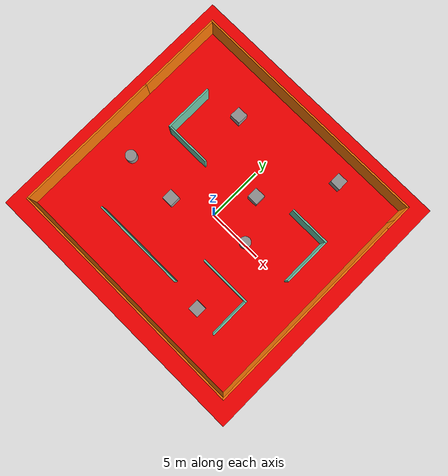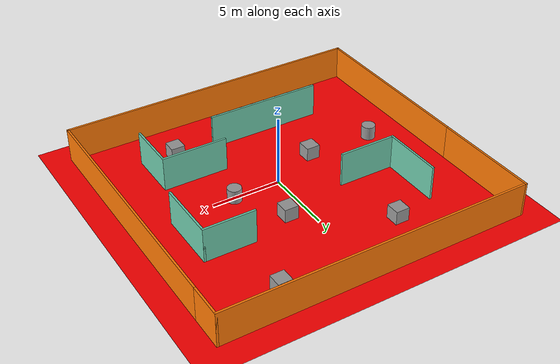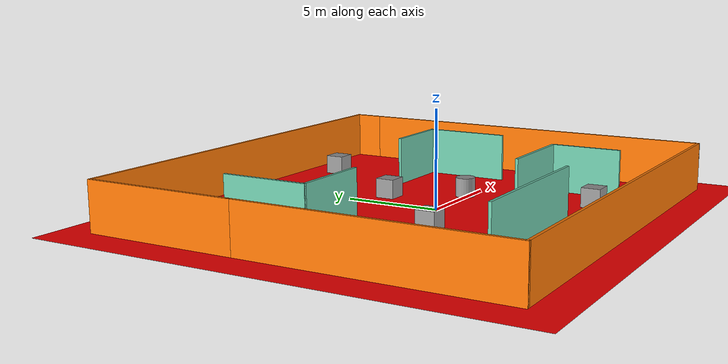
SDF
<sdf version="1.7">
 <world name="default">
  <light name="sun" type="directional">
   <pose>0 0 10 0 -0 0</pose>
   <diffuse>0.8 0.8 0.8 1</diffuse>
   <specular>0.2 0.2 0.2 1</specular>
   <attenuation>
    <range>1000</range>
    <constant>0.9</constant>
    <linear>0.01</linear>
    <quadratic>0.001</quadratic>
   </attenuation>
   <direction>-0.5 0.1 -0.9</direction>
   <spot><inner_angle>0</inner_angle><outer_angle>0</outer_angle><falloff>0</falloff></spot>
  </light>
  <model name="ground_plane">
   <static>1</static>
   <link name="link">
    <collision name="collision">
     <geometry><plane><normal>0 0 1</normal><size>100 100</size></plane></geometry>
     <surface>
      <contact><collide_bitmask>65535</collide_bitmask></contact>
      <friction><ode><mu>100</mu><mu2>50</mu2></ode></friction>
     </surface>
    </collision>
    <visual name="target_visual">
     <geometry><sphere><radius>0.2</radius></sphere></geometry>
     <material><ambient>1 0 0 1</ambient><diffuse>1 0 0 1</diffuse></material>
     <pose>3 2 1 0 0 0</pose>
     <cast_shadows>0</cast_shadows>
    </visual>
    <visual name="visual">
     <cast_shadows>0</cast_shadows>
     <geometry><plane><normal>0 0 1</normal><size>100 100</size></plane></geometry>
     <material>
      <script><uri>file://media/materials/scripts/gazebo.material</uri><name>Gazebo/Grey</name></script>
     </material>
    </visual>
   </link>
  </model>
  <gravity>0 0 -9.8</gravity>
  <magnetic_field>6e-06 2.3e-05 -4.2e-05</magnetic_field>
  <atmosphere type="adiabatic"/>
  <physics type="ode">
   <max_step_size>0.001</max_step_size>
   <real_time_factor>1</real_time_factor>
   <real_time_update_rate>1000</real_time_update_rate>
  </physics>
  <scene><ambient>0.4 0.4 0.4 1</ambient><background>0.7 0.7 0.7 1</background><shadows>1</shadows></scene>
  <spherical_coordinates>
   <surface_model>EARTH_WGS84</surface_model>
   <latitude_deg>0</latitude_deg>
   <longitude_deg>0</longitude_deg>
   <elevation>0</elevation>
   <heading_deg>0</heading_deg>
  </spherical_coordinates>
  <model name="environment">
   <pose>-0.300416 0.727904 0 0 -0 0</pose>
   <link name="Wall_55">
    <collision name="Wall_55_Collision">
     <geometry><box><size>13.5 0.15 2.5</size></box></geometry>
     <pose>0 0 1.25 0 -0 0</pose>
    </collision>
    <visual name="Wall_55_Visual">
     <pose>0 0 1.25 0 -0 0</pose>
     <geometry><box><size>13.5 0.15 2.5</size></box></geometry>
     <material>
      <script><uri>file://media/materials/scripts/gazebo.material</uri><name>Gazebo/Grey</name></script>
      <ambient>0.996078 0.47451 0.0196078 1</ambient>
     </material>
     <meta><layer>0</layer></meta>
    </visual>
    <pose>-11.175 -3.925 0 0 -0 -1.5708</pose>
   </link>
   <link name="Wall_56">
    <collision name="Wall_56_Collision">
     <geometry><box><size>22.5 0.15 2.5</size></box></geometry>
     <pose>0 0 1.25 0 -0 0</pose>
    </collision>
    <visual name="Wall_56_Visual">
     <pose>0 0 1.25 0 -0 0</pose>
     <geometry><box><size>22.5 0.15 2.5</size></box></geometry>
     <material>
      <script><uri>file://media/materials/scripts/gazebo.material</uri><name>Gazebo/Grey</name></script>
      <ambient>0.996078 0.47451 0.0196078 1</ambient>
     </material>
     <meta><layer>0</layer></meta>
    </visual>
    <pose>0 -10.6 0 0 -0 0</pose>
   </link>
   <link name="Wall_57">
    <collision name="Wall_57_Collision">
     <geometry><box><size>19.75 0.15 2.5</size></box></geometry>
     <pose>0 0 1.25 0 -0 0</pose>
    </collision>
    <visual name="Wall_57_Visual">
     <pose>0 0 1.25 0 -0 0</pose>
     <geometry><box><size>19.75 0.15 2.5</size></box></geometry>
     <material>
      <script><uri>file://media/materials/scripts/gazebo.material</uri><name>Gazebo/Grey</name></script>
      <ambient>0.996078 0.47451 0.0196078 1</ambient>
     </material>
     <meta><layer>0</layer></meta>
    </visual>
    <pose>11.175 -0.8 0 0 -0 1.5708</pose>
   </link>
   <link name="Wall_61">
    <collision name="Wall_61_Collision">
     <geometry><box><size>8 0.15 2.5</size></box></geometry>
     <pose>0 0 1.25 0 -0 0</pose>
    </collision>
    <visual name="Wall_61_Visual">
     <pose>0 0 1.25 0 -0 0</pose>
     <geometry><box><size>8 0.15 2.5</size></box></geometry>
     <material>
      <script><uri>file://media/materials/scripts/gazebo.material</uri><name>Gazebo/Grey</name></script>
      <ambient>0.996078 0.47451 0.0196078 1</ambient>
     </material>
     <meta><layer>0</layer></meta>
    </visual>
    <pose>-11.175 6.675 0 0 -0 1.5708</pose>
   </link>
   <link name="Wall_62">
    <collision name="Wall_62_Collision">
     <geometry><box><size>22.5 0.15 2.5</size></box></geometry>
     <pose>0 0 1.25 0 -0 0</pose>
    </collision>
    <visual name="Wall_62_Visual">
     <pose>0 0 1.25 0 -0 0</pose>
     <geometry><box><size>22.5 0.15 2.5</size></box></geometry>
     <material>
      <script><uri>file://media/materials/scripts/gazebo.material</uri><name>Gazebo/Grey</name></script>
      <ambient>0.996078 0.47451 0.0196078 1</ambient>
     </material>
     <meta><layer>0</layer></meta>
    </visual>
    <pose>0 10.6 0 0 -0 0</pose>
   </link>
   <link name="Wall_63">
    <collision name="Wall_63_Collision">
     <geometry><box><size>2.5 0.15 2.5</size></box></geometry>
     <pose>0 0 1.25 0 -0 0</pose>
    </collision>
    <visual name="Wall_63_Visual">
     <pose>0 0 1.25 0 -0 0</pose>
     <geometry><box><size>2.5 0.15 2.5</size></box></geometry>
     <material>
      <script><uri>file://media/materials/scripts/gazebo.material</uri><name>Gazebo/Grey</name></script>
      <ambient>0.996078 0.47451 0.0196078 1</ambient>
     </material>
     <meta><layer>0</layer></meta>
    </visual>
    <pose>11.175 9.425 0 0 -0 -1.5708</pose>
   </link>
   <link name="Wall_65">
    <collision name="Wall_65_Collision">
     <geometry><box><size>4.5 0.15 2.5</size></box></geometry>
     <pose>0 0 1.25 0 -0 0</pose>
    </collision>
    <visual name="Wall_65_Visual">
     <pose>0 0 1.25 0 -0 0</pose>
     <geometry><box><size>4.5 0.15 2.5</size></box></geometry>
     <material>
      <script><uri>file://media/materials/scripts/gazebo.material</uri><name>Gazebo/Grey</name></script>
      <ambient>0.435294 0.796078 0.67451 1</ambient>
     </material>
     <meta><layer>0</layer></meta>
    </visual>
    <pose>-7.28296 3.91589 0 0 -0 -1.5708</pose>
   </link>
   <link name="Wall_66">
    <collision name="Wall_66_Collision">
     <geometry><box><size>4.25 0.15 2.5</size></box></geometry>
     <pose>0 0 1.25 0 -0 0</pose>
    </collision>
    <visual name="Wall_66_Visual">
     <pose>0 0 1.25 0 -0 0</pose>
     <geometry><box><size>4.25 0.15 2.5</size></box></geometry>
     <material>
      <script><uri>file://media/materials/scripts/gazebo.material</uri><name>Gazebo/Grey</name></script>
      <ambient>0.435294 0.796078 0.67451 1</ambient>
     </material>
     <meta><layer>0</layer></meta>
    </visual>
    <pose>-5.23296 1.74089 0 0 -0 0</pose>
   </link>
   <link name="Wall_68">
    <collision name="Wall_68_Collision">
     <geometry><box><size>3.75 0.15 2.5</size></box></geometry>
     <pose>0 0 1.25 0 -0 0</pose>
    </collision>
    <visual name="Wall_68_Visual">
     <pose>0 0 1.25 0 -0 0</pose>
     <geometry><box><size>3.75 0.15 2.5</size></box></geometry>
     <material>
      <script><uri>file://media/materials/scripts/gazebo.material</uri><name>Gazebo/Grey</name></script>
      <ambient>0.435294 0.796078 0.67451 1</ambient>
     </material>
     <meta><layer>0</layer></meta>
    </visual>
    <pose>6.6086 3.89729 0 0 -0 0</pose>
   </link>
   <link name="Wall_69">
    <collision name="Wall_69_Collision">
     <geometry><box><size>4.5 0.15 2.5</size></box></geometry>
     <pose>0 0 1.25 0 -0 0</pose>
    </collision>
    <visual name="Wall_69_Visual">
     <pose>0 0 1.25 0 -0 0</pose>
     <geometry><box><size>4.5 0.15 2.5</size></box></geometry>
     <material>
      <script><uri>file://media/materials/scripts/gazebo.material</uri><name>Gazebo/Grey</name></script>
      <ambient>0.435294 0.796078 0.67451 1</ambient>
     </material>
     <meta><layer>0</layer></meta>
    </visual>
    <pose>8.4086 1.72229 0 0 -0 -1.5708</pose>
   </link>
   <link name="Wall_71">
    <collision name="Wall_71_Collision">
     <geometry><box><size>8.5 0.15 2.5</size></box></geometry>
     <pose>0 0 1.25 0 -0 0</pose>
    </collision>
    <visual name="Wall_71_Visual">
     <pose>0 0 1.25 0 -0 0</pose>
     <geometry><box><size>8.5 0.15 2.5</size></box></geometry>
     <material>
      <script><uri>file://media/materials/scripts/gazebo.material</uri><name>Gazebo/Grey</name></script>
      <ambient>0.435294 0.796078 0.67451 1</ambient>
     </material>
     <meta><layer>0</layer></meta>
    </visual>
    <pose>-2.19842 -6.85672 0 0 -0 0</pose>
   </link>
   <link name="Wall_73">
    <collision name="Wall_73_Collision">
     <geometry><box><size>4.75 0.15 2.5</size></box></geometry>
     <pose>0 0 1.25 0 -0 0</pose>
    </collision>
    <visual name="Wall_73_Visual">
     <pose>0 0 1.25 0 -0 0</pose>
     <geometry><box><size>4.75 0.15 2.5</size></box></geometry>
     <material>
      <script><uri>file://media/materials/scripts/gazebo.material</uri><name>Gazebo/Grey</name></script>
      <ambient>0.435294 0.796078 0.67451 1</ambient>
     </material>
     <meta><layer>0</layer></meta>
    </visual>
    <pose>4.8615 -4.02108 0 0 -0 0</pose>
   </link>
   <link name="Wall_74">
    <collision name="Wall_74_Collision">
     <geometry><box><size>3.75 0.15 2.5</size></box></geometry>
     <pose>0 0 1.25 0 -0 0</pose>
    </collision>
    <visual name="Wall_74_Visual">
     <pose>0 0 1.25 0 -0 0</pose>
     <geometry><box><size>3.75 0.15 2.5</size></box></geometry>
     <material>
      <script><uri>file://media/materials/scripts/gazebo.material</uri><name>Gazebo/Grey</name></script>
      <ambient>0.435294 0.796078 0.67451 1</ambient>
     </material>
     <meta><layer>0</layer></meta>
    </visual>
    <pose>7.1615 -5.82108 0 0 -0 -1.5708</pose>
   </link>
   <static>1</static>
  </model>
  <model name="unit_box">
   <pose>-4.45005 7.44754 0.499995 0 1e-05 0</pose>
   <link name="link">
    <inertial>
     <mass>1</mass>
     <inertia>
      <ixx>0.166667</ixx>
      <ixy>0</ixy>
      <ixz>0</ixz>
      <iyy>0.166667</iyy>
      <iyz>0</iyz>
      <izz>0.166667</izz>
     </inertia>
    </inertial>
    <collision name="collision"><geometry><box><size>1 1 1</size></box></geometry></collision>
    <visual name="visual">
     <geometry><box><size>1 1 1</size></box></geometry>
     <material>
      <script><name>Gazebo/Grey</name><uri>file://media/materials/scripts/gazebo.material</uri></script>
     </material>
    </visual>
   </link>
  </model>
  <model name="unit_box_0">
   <pose>1.4624 3.53497 0.499995 -1e-05 -0 -0</pose>
   <link name="link">
    <inertial>
     <mass>1</mass>
     <inertia>
      <ixx>0.166667</ixx>
      <ixy>0</ixy>
      <ixz>0</ixz>
      <iyy>0.166667</iyy>
      <iyz>0</iyz>
      <izz>0.166667</izz>
     </inertia>
    </inertial>
    <collision name="collision"><geometry><box><size>1 1 1</size></box></geometry></collision>
    <visual name="visual">
     <geometry><box><size>1 1 1</size></box></geometry>
     <material>
      <script><name>Gazebo/Grey</name><uri>file://media/materials/scripts/gazebo.material</uri></script>
     </material>
    </visual>
   </link>
  </model>
  <model name="unit_box_1">
   <pose>-3.50819 -1.57316 0.499995 0 1e-05 0</pose>
   <link name="link">
    <inertial>
     <mass>1</mass>
     <inertia>
      <ixx>0.166667</ixx>
      <ixy>0</ixy>
      <ixz>0</ixz>
      <iyy>0.166667</iyy>
      <iyz>0</iyz>
      <izz>0.166667</izz>
     </inertia>
    </inertial>
    <collision name="collision"><geometry><box><size>1 1 1</size></box></geometry></collision>
    <visual name="visual">
     <geometry><box><size>1 1 1</size></box></geometry>
     <material>
      <script><name>Gazebo/Grey</name><uri>file://media/materials/scripts/gazebo.material</uri></script>
     </material>
    </visual>
   </link>
  </model>
  <model name="unit_cylinder">
   <pose>3.49439 0.151942 0.499993 -3e-06 -3e-06 0</pose>
   <link name="link">
    <inertial>
     <mass>1</mass>
     <inertia><ixx>0.145833</ixx><ixy>0</ixy><ixz>0</ixz><iyy>0.145833</iyy><iyz>0</iyz><izz>0.125</izz></inertia>
    </inertial>
    <collision name="collision">
     <geometry><cylinder><radius>0.5</radius><length>1</length></cylinder></geometry>
    </collision>
    <visual name="visual">
     <geometry><cylinder><radius>0.5</radius><length>1</length></cylinder></geometry>
     <material>
      <script><name>Gazebo/Grey</name><uri>file://media/materials/scripts/gazebo.material</uri></script>
     </material>
    </visual>
   </link>
  </model>
  <model name="unit_cylinder_0">
   <pose>-8.45045 -1.42055 0.499997 3e-06 4e-06 -0</pose>
   <link name="link">
    <inertial>
     <mass>1</mass>
     <inertia><ixx>0.145833</ixx><ixy>0</ixy><ixz>0</ixz><iyy>0.145833</iyy><iyz>0</iyz><izz>0.125</izz></inertia>
    </inertial>
    <collision name="collision">
     <geometry><cylinder><radius>0.5</radius><length>1</length></cylinder></geometry>
    </collision>
    <visual name="visual">
     <geometry><cylinder><radius>0.5</radius><length>1</length></cylinder></geometry>
     <material>
      <script><name>Gazebo/Grey</name><uri>file://media/materials/scripts/gazebo.material</uri></script>
     </material>
    </visual>
   </link>
  </model>
  <model name="unit_box_2">
   <pose>5.49377 9.30513 0.499995 -1e-05 -0 0</pose>
   <link name="link">
    <inertial>
     <mass>1</mass>
     <inertia>
      <ixx>0.166667</ixx>
      <ixy>0</ixy>
      <ixz>0</ixz>
      <iyy>0.166667</iyy>
      <iyz>0</iyz>
      <izz>0.166667</izz>
     </inertia>
    </inertial>
    <collision name="collision"><geometry><box><size>1 1 1</size></box></geometry></collision>
    <visual name="visual">
     <geometry><box><size>1 1 1</size></box></geometry>
     <material>
      <script><name>Gazebo/Grey</name><uri>file://media/materials/scripts/gazebo.material</uri></script>
     </material>
    </visual>
   </link>
  </model>
  <model name="unit_box_3">
   <pose>4.51476 -6.47738 0.5 0 -0 0</pose>
   <link name="link">
    <inertial>
     <mass>1</mass>
     <inertia>
      <ixx>0.166667</ixx>
      <ixy>0</ixy>
      <ixz>0</ixz>
      <iyy>0.166667</iyy>
      <iyz>0</iyz>
      <izz>0.166667</izz>
     </inertia>
    </inertial>
    <collision name="collision"><geometry><box><size>1 1 1</size></box></geometry></collision>
    <visual name="visual">
     <geometry><box><size>1 1 1</size></box></geometry>
     <material>
      <script><name>Gazebo/Grey</name><uri>file://media/materials/scripts/gazebo.material</uri></script>
     </material>
    </visual>
   </link>
  </model>
  <plugin name="marker_plugin" filename="libgazebo_ros_marker.so">
   <namespace>/goal_marker</namespace>
   <topic>/goal_marker</topic>
  </plugin>
 </world>
</sdf>
